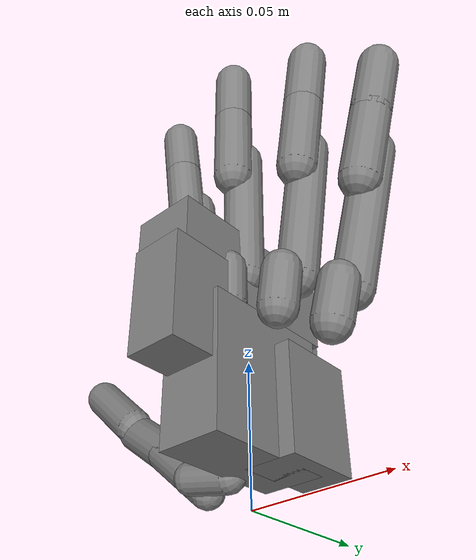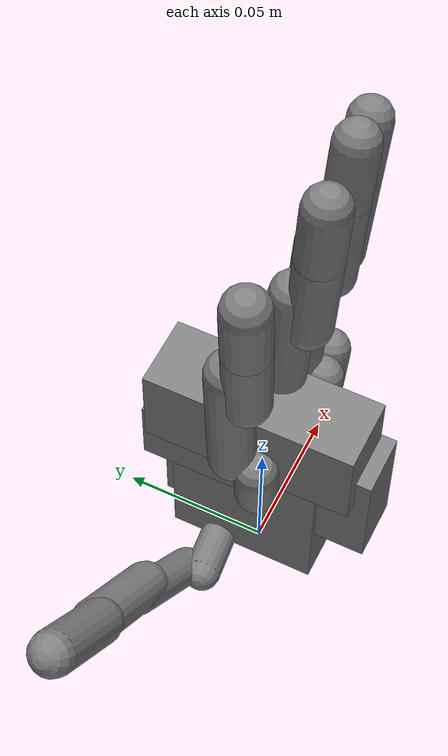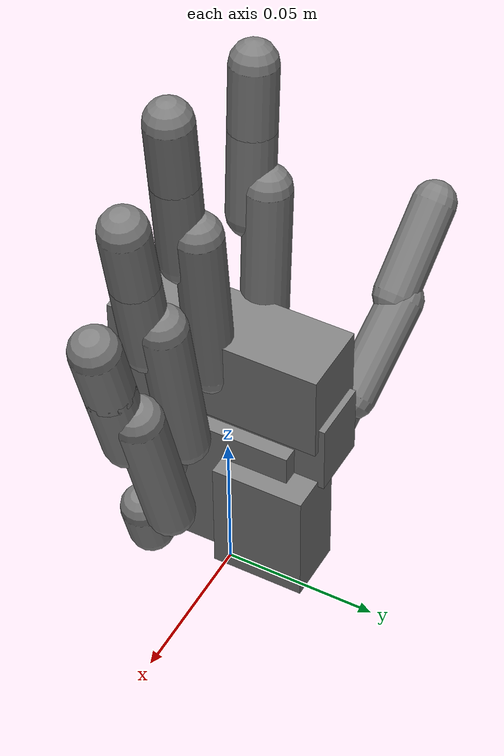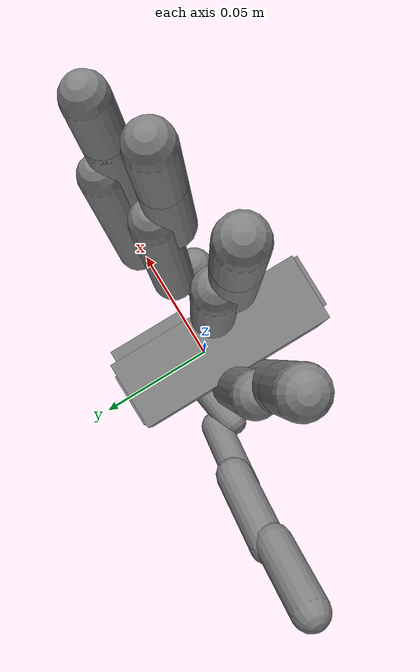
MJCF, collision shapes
<mujoco model="wujihand-right-mjx">
  <compiler angle="radian" meshdir="../meshes/right/" />

    <option timestep="0.01" integrator="Euler" iterations="5" ls_iterations="8">
    <flag eulerdamp="disable"/>
  </option>

  <custom>
    <numeric data="20" name="max_contact_points"/>
    <numeric data="16" name="max_geom_pairs"/>
  </custom>

    <default>
    <geom group="3" friction="0.2" solref="0.02 1.5" solimp="0.9 0.95 0.001" priority="1" contype="0" conaffinity="0"/>
    <joint axis="0 0 1" damping="0" armature="0.0002"/>
  </default>

  <asset>
    <mesh name="right_palm_link" content_type="model/stl" file="right_palm_link.STL" />
    <mesh name="right_finger1_link1" content_type="model/stl" file="right_finger1_link1.STL" />
    <mesh name="right_finger1_link2" content_type="model/stl" file="right_finger1_link2.STL" />
    <mesh name="right_finger1_link3" content_type="model/stl" file="right_finger1_link3.STL" />
    <mesh name="right_finger1_link4" content_type="model/stl" file="right_finger1_link4.STL" />
    <mesh name="right_finger1_tip_link" content_type="model/stl" file="right_finger1_tip_link.STL" />
    <mesh name="right_finger2_link1" content_type="model/stl" file="right_finger2_link1.STL" />
    <mesh name="right_finger2_link2" content_type="model/stl" file="right_finger2_link2.STL" />
    <mesh name="right_finger2_link3" content_type="model/stl" file="right_finger2_link3.STL" />
    <mesh name="right_finger2_link4" content_type="model/stl" file="right_finger2_link4.STL" />
    <mesh name="right_finger2_tip_link" content_type="model/stl" file="right_finger2_tip_link.STL" />
    <mesh name="right_finger3_link1" content_type="model/stl" file="right_finger3_link1.STL" />
    <mesh name="right_finger3_link2" content_type="model/stl" file="right_finger3_link2.STL" />
    <mesh name="right_finger3_link3" content_type="model/stl" file="right_finger3_link3.STL" />
    <mesh name="right_finger3_link4" content_type="model/stl" file="right_finger3_link4.STL" />
    <mesh name="right_finger3_tip_link" content_type="model/stl" file="right_finger3_tip_link.STL" />
    <mesh name="right_finger4_link1" content_type="model/stl" file="right_finger4_link1.STL" />
    <mesh name="right_finger4_link2" content_type="model/stl" file="right_finger4_link2.STL" />
    <mesh name="right_finger4_link3" content_type="model/stl" file="right_finger4_link3.STL" />
    <mesh name="right_finger4_link4" content_type="model/stl" file="right_finger4_link4.STL" />
    <mesh name="right_finger4_tip_link" content_type="model/stl" file="right_finger4_tip_link.STL" />
    <mesh name="right_finger5_link1" content_type="model/stl" file="right_finger5_link1.STL" />
    <mesh name="right_finger5_link2" content_type="model/stl" file="right_finger5_link2.STL" />
    <mesh name="right_finger5_link3" content_type="model/stl" file="right_finger5_link3.STL" />
    <mesh name="right_finger5_link4" content_type="model/stl" file="right_finger5_link4.STL" />
    <mesh name="right_finger5_tip_link" content_type="model/stl" file="right_finger5_tip_link.STL" />
  </asset>

  <worldbody>
    <body name="right_palm_link"><inertial pos="0.00464638201985134 -0.00350423603669829 0.0355450772461747" mass="0.16914" quat="-0.01772809 -0.04274722 0.09308295 0.99458230" diaginertia="1.40677446e-04 9.58896475e-05 5.81329061e-05" /><geom type="mesh" contype="0" conaffinity="0" group="1" density="0" rgba="0.6 0.8 0.9 1" mesh="right_palm_link" />
          <geom name="right_palm_main" type="box" pos="-0.006 -0.002 0.083" size="0.012 0.035 0.015" friction="0.7" contype="1" conaffinity="1"/>
      <geom name="right_palm_lower" type="box" pos="-0.003 0.0 0.04" size="0.012 0.025 0.025" friction="0.7" contype="1" conaffinity="1"/>
      <geom name="right_palm_thumb" type="box" pos="0.005 0.018 0.035" size="0.010 0.015 0.020" friction="0.7" contype="1" conaffinity="1"/>
      <geom name="right_palm_upper" type="box" pos="-0.006 0.015 0.065" size="0.010 0.020 0.012" friction="0.7" contype="1" conaffinity="1"/>
      <geom name="right_palm_pinky" type="box" pos="-0.003 -0.030 0.060" size="0.010 0.012 0.020" friction="0.7" contype="1" conaffinity="1"/>
    <body name="right_finger1_link1" pos="-0.01666 0.0081297 0.017017" quat="0.656123 -0.462124 -0.541441 0.250569">
      <inertial pos="-0.00194261 0.000842658 0.00731566" quat="0.904243 0.21652 0.0443878 -0.365368" mass="0.0075" diaginertia="3.37599e-07 3.01198e-07 2.11203e-07" />
      <joint name="right_finger1_joint1" pos="0 0 0" axis="0 1 0" range="0.0368 1.6125" actuatorfrcrange="-0.4452 0.4452" armature="0.0005" />
      <geom type="mesh" contype="0" conaffinity="0" group="1" density="0" rgba="0.7 0.7 0.7 1" mesh="right_finger1_link1" />
            <geom name="right_finger1_link1_col" type="capsule" size="0.006" fromto="0 0 0 -0.005 -0.006 0.014" contype="0" conaffinity="0"/>
      <body name="right_finger1_link2" pos="-0.00053658 0.00024788 0.014754" quat="0.644404 0.307204 -0.177187 0.677476">
        <inertial pos="1.21917e-05 -7.81224e-06 0.0130404" quat="0.815906 0.0024483 -0.00462559 0.57816" mass="0.0248" diaginertia="2.81725e-06 2.75299e-06 6.79766e-07" />
        <joint name="right_finger1_joint2" pos="0 0 0" axis="0 1 0" range="-0.1576 0.9312" actuatorfrcrange="-0.4259 0.4259" armature="0.0005" />
        <geom type="mesh" contype="0" conaffinity="0" group="1" density="0" rgba="0.9 0.8 0.6 1" mesh="right_finger1_link2" />
              <geom name="right_finger1_link2_col" type="capsule" size="0.0063" fromto="0 0 0 0 0.001 0.035" contype="2" conaffinity="2"/>
        <body name="right_finger1_link3" pos="0 0 0.0325" quat="0.480543 0.0209809 -0.0382418 -0.875886">
          <inertial pos="-9.22346e-08 -5.00306e-05 0.0142927" quat="0.999951 0 0.00989566 0" mass="0.0165" diaginertia="1.4604e-06 1.42e-06 4.49604e-07" />
          <joint name="right_finger1_joint3" pos="0 0 0" axis="0 1 0" range="-0.4638 1.5607" actuatorfrcrange="-0.1888 0.1888" />
          <geom type="mesh" contype="0" conaffinity="0" group="1" density="0" rgba="0.6 0.8 0.9 1" mesh="right_finger1_link3" />
                <geom name="right_finger1_link3_col" type="capsule" size="0.0075" fromto="0.001149 0.000087 -0.004967 -0.001675 0.00244 0.029351" contype="1" conaffinity="1"/>
          <body name="right_finger1_link4" pos="0 -5e-05 0.035">
            <inertial pos="-0.000976882 2.77882e-08 0.0108608" quat="0.705263 -0.0510236 -0.0510236 0.705263" mass="0.0206" diaginertia="1.78268e-06 1.7503e-06 7.72381e-07" />
            <joint name="right_finger1_joint4" pos="0 0 0" axis="0 1 0" range="-0.4829 1.5451" actuatorfrcrange="-0.1468 0.1468" />
            <geom type="mesh" contype="0" conaffinity="0" group="1" density="0" rgba="0.6 0.8 0.9 1" mesh="right_finger1_link4" />
                  <geom name="right_finger1_link4_col" type="capsule" size="0.0075" fromto="-0.001 0 -0.005 -0.001 0 0.027" friction="0.7" contype="1" conaffinity="1"/>
            <geom pos="-0.000557449 0 0.0276973" type="mesh" contype="0" conaffinity="0" group="1" density="0" rgba="0.6 0.8 0.9 1" mesh="right_finger1_tip_link" />

          </body>
        </body>
      </body>
    </body>
    <body name="right_finger2_link1" pos="-0.020353 -0.0033601 0.070679" quat="0.739798 -0.0262794 -0.0486741 0.670551">
      <inertial pos="-0.00177765 -1.17982e-08 0.0075998" quat="0.92388 0 0.382683 0" mass="0.0032" diaginertia="1.1e-07 7e-08 5e-08" />
      <joint name="right_finger2_joint1" pos="0 0 0" axis="0 1 0" range="-0.1611 1.5588" actuatorfrcrange="-0.6188 0.6188" armature="0.0005" />
      <geom type="mesh" contype="0" conaffinity="0" group="1" density="0" rgba="0.7 0.7 0.7 1" mesh="right_finger2_link1" />
            <geom name="right_finger2_link1_col" type="capsule" size="0.007" fromto="-0.004 0 -0.006 -0.004 0 0.008" contype="0" conaffinity="0"/>
      <body name="right_finger2_link2" pos="-0.00120098 0 0.0145" quat="0.707107 0 0 -0.707107">
        <inertial pos="6.82662e-09 4.92159e-07 0.0187992" quat="0.70703 0.0104245 0.0104245 0.70703" mass="0.033" diaginertia="6.34e-06 6.31472e-06 8.85281e-07" />
        <joint name="right_finger2_joint2" pos="0 0 0" axis="0 1 0" range="-0.4044 0.3054" actuatorfrcrange="-0.1822 0.1822" />
        <geom type="mesh" contype="0" conaffinity="0" group="1" density="0" rgba="0.9 0.8 0.6 1" mesh="right_finger2_link2" />
              <geom name="right_finger2_link2_col" type="capsule" size="0.0075" fromto="0 0.006 -0.005 0 0.006 0.049" contype="2" conaffinity="2"/>
        <body name="right_finger2_link3" pos="0 0 0.0376" quat="0.707107 0 0 0.707107">
          <inertial pos="-0.000247461 2.027e-08 0.0190489" quat="0.999892 0 -0.0146884 0" mass="0.0165" diaginertia="1.47088e-06 1.44e-06 4.49118e-07" />
          <joint name="right_finger2_joint3" pos="0 0 0" axis="0 1 0" range="-0.4714 1.5504" actuatorfrcrange="-0.2251 0.2251" />
          <geom type="mesh" contype="0" conaffinity="0" group="1" density="0" rgba="0.6 0.8 0.9 1" mesh="right_finger2_link3" />
                <geom name="right_finger2_link3_col" type="capsule" size="0.0075" fromto="0 0 0 0 0 0.0295" contype="1" conaffinity="1"/>
          <body name="right_finger2_link4" pos="0 0 0.0295">
            <inertial pos="-0.000354484 -0.000309523 0.0119913" quat="0.995301 -0.0107356 -0.093262 0.0237448" mass="0.01718" diaginertia="1.18402e-06 1.07718e-06 4.1779e-07" />
            <joint name="right_finger2_joint4" pos="0 0 0" axis="0 1 0" range="-0.4644 1.5753" actuatorfrcrange="-0.217 0.217" />
            <geom type="mesh" contype="0" conaffinity="0" group="1" density="0" rgba="0.6 0.8 0.9 1" mesh="right_finger2_link4" />
                  <geom name="right_finger2_link4_col" type="capsule" size="0.0075" fromto="0 0 0 0 0 0.022" friction="0.7" contype="1" conaffinity="1"/>
            <geom pos="-0.0016722 0 0.025" type="mesh" contype="0" conaffinity="0" group="1" density="0" rgba="0.6 0.8 0.9 1" mesh="right_finger2_tip_link" />

          </body>
        </body>
      </body>
    </body>
    <body name="right_finger3_link1" pos="0.0014735 -0.0083399 0.073903" quat="0.706847 0.0276704 0.00333924 0.706817">
      <inertial pos="-0.00177765 -1.1386e-08 0.0075998" quat="0.92388 0 0.382683 0" mass="0.0032" diaginertia="1.1e-07 7e-08 5e-08" />
      <joint name="right_finger3_joint1" pos="0 0 0" axis="0 1 0" range="-0.1719 1.5496" actuatorfrcrange="-0.6494 0.6494" armature="0.0005" />
      <geom type="mesh" contype="0" conaffinity="0" group="1" density="0" rgba="0.7 0.7 0.7 1" mesh="right_finger3_link1" />
            <geom name="right_finger3_link1_col" type="capsule" size="0.007" fromto="-0.004 0 -0.006 -0.004 0 0.008" contype="0" conaffinity="0"/>
      <body name="right_finger3_link2" pos="-0.00120098 0 0.0145" quat="0.707107 0 0 -0.707107">
        <inertial pos="9.2153e-09 4.93115e-07 0.0187992" quat="0.70703 0.0104245 0.0104245 0.70703" mass="0.033" diaginertia="6.34e-06 6.31472e-06 8.85281e-07" />
        <joint name="right_finger3_joint2" pos="0 0 0" axis="0 1 0" range="-0.4014 0.2996" actuatorfrcrange="-0.1827 0.1827" />
        <geom type="mesh" contype="0" conaffinity="0" group="1" density="0" rgba="0.9 0.8 0.6 1" mesh="right_finger3_link2" />
              <geom name="right_finger3_link2_col" type="capsule" size="0.0075" fromto="0 0.006 -0.005 0 0.006 0.049" contype="2" conaffinity="2"/>
        <body name="right_finger3_link3" pos="0 0 0.0376" quat="0.707107 0 0 0.707107">
          <inertial pos="-0.00024748 6.2451e-08 0.0190489" quat="0.999892 0 -0.0146884 0" mass="0.0165" diaginertia="1.47088e-06 1.44e-06 4.49118e-07" />
          <joint name="right_finger3_joint3" pos="0 0 0" axis="0 1 0" range="-0.4632 1.5613" actuatorfrcrange="-0.2078 0.2078" />
          <geom type="mesh" contype="0" conaffinity="0" group="1" density="0" rgba="0.6 0.8 0.9 1" mesh="right_finger3_link3" />
                <geom name="right_finger3_link3_col" type="capsule" size="0.0075" fromto="0 0 0 0 0 0.0295" contype="1" conaffinity="1"/>
          <body name="right_finger3_link4" pos="0 0 0.0295">
            <inertial pos="-0.000354466 -0.000309511 0.0119913" quat="0.995301 -0.0107356 -0.093262 0.0237448" mass="0.01718" diaginertia="1.18402e-06 1.07718e-06 4.1779e-07" />
            <joint name="right_finger3_joint4" pos="0 0 0" axis="0 1 0" range="-0.4697 1.5702" actuatorfrcrange="-0.2018 0.2018" />
            <geom type="mesh" contype="0" conaffinity="0" group="1" density="0" rgba="0.6 0.8 0.9 1" mesh="right_finger3_link4" />
                  <geom name="right_finger3_link4_col" type="capsule" size="0.0075" fromto="0 0 0 0 0 0.022" friction="0.7" contype="1" conaffinity="1"/>
            <geom pos="-0.0016722 0 0.025" type="mesh" contype="0" conaffinity="0" group="1" density="0" rgba="0.6 0.8 0.9 1" mesh="right_finger3_tip_link" />

          </body>
        </body>
      </body>
    </body>
    <body name="right_finger4_link1" pos="0.021879 -0.0056256 0.064714" quat="0.680373 0.0664803 0.0570311 0.727613">
      <inertial pos="-0.00177765 -1.12434e-08 0.00759979" quat="0.92388 0 0.382683 0" mass="0.0032" diaginertia="1.1e-07 7e-08 5e-08" />
      <joint name="right_finger4_joint1" pos="0 0 0" axis="0 1 0" range="-0.1601 1.5534" actuatorfrcrange="-0.6389 0.6389" armature="0.0005" />
      <geom type="mesh" contype="0" conaffinity="0" group="1" density="0" rgba="0.7 0.7 0.7 1" mesh="right_finger4_link1" />
            <geom name="right_finger4_link1_col" type="capsule" size="0.007" fromto="-0.004 0 -0.006 -0.004 0 0.008" contype="0" conaffinity="0"/>
      <body name="right_finger4_link2" pos="-0.00120098 0 0.0145" quat="0.707107 0 0 -0.707107">
        <inertial pos="9.30944e-09 4.93686e-07 0.0187992" quat="0.70703 0.0104245 0.0104245 0.70703" mass="0.033" diaginertia="6.34e-06 6.31472e-06 8.85281e-07" />
        <joint name="right_finger4_joint2" pos="0 0 0" axis="0 1 0" range="-0.4134 0.3161" actuatorfrcrange="-0.1832 0.1832" />
        <geom type="mesh" contype="0" conaffinity="0" group="1" density="0" rgba="0.9 0.8 0.6 1" mesh="right_finger4_link2" />
              <geom name="right_finger4_link2_col" type="capsule" size="0.0075" fromto="0 0.006 -0.005 0 0.006 0.049" contype="2" conaffinity="2"/>
        <body name="right_finger4_link3" pos="0 0 0.0376" quat="0.707107 0 0 0.707107">
          <inertial pos="-0.00024747 4.55435e-08 0.0190489" quat="0.999892 0 -0.0146884 0" mass="0.0165" diaginertia="1.47088e-06 1.44e-06 4.49118e-07" />
          <joint name="right_finger4_joint3" pos="0 0 0" axis="0 1 0" range="-0.4782 1.5448" actuatorfrcrange="-0.2249 0.2249" />
          <geom type="mesh" contype="0" conaffinity="0" group="1" density="0" rgba="0.6 0.8 0.9 1" mesh="right_finger4_link3" />
                <geom name="right_finger4_link3_col" type="capsule" size="0.0075" fromto="0 0 0 0 0 0.0295" contype="1" conaffinity="1"/>
          <body name="right_finger4_link4" pos="0 0 0.0295">
            <inertial pos="-0.00035448 -0.000309504 0.0119913" quat="0.995301 -0.0107356 -0.093262 0.0237448" mass="0.01718" diaginertia="1.18402e-06 1.07718e-06 4.1779e-07" />
            <joint name="right_finger4_joint4" pos="0 0 0" axis="0 1 0" range="-0.4825 1.555" actuatorfrcrange="-0.2044 0.2044" />
            <geom type="mesh" contype="0" conaffinity="0" group="1" density="0" rgba="0.6 0.8 0.9 1" mesh="right_finger4_link4" />
                  <geom name="right_finger4_link4_col" type="capsule" size="0.0075" fromto="0 0 0 0 0 0.022" friction="0.7" contype="1" conaffinity="1"/>
            <geom pos="-0.0016722 0 0.025" type="mesh" contype="0" conaffinity="0" group="1" density="0" rgba="0.6 0.8 0.9 1" mesh="right_finger4_tip_link" />

          </body>
        </body>
      </body>
    </body>
    <body name="right_finger5_link1" pos="0.0391447 -0.000761381 0.0540406" quat="0.65218 0.10517 0.0942698 0.744791">
      <inertial pos="-0.00177766 -1.09848e-08 0.00759979" quat="0.92388 0 0.382683 0" mass="0.0032" diaginertia="1.1e-07 7e-08 5e-08" />
      <joint name="right_finger5_joint1" pos="0 0 0" axis="0 1 0" range="-0.1674 1.5539" actuatorfrcrange="-0.6441 0.6441" armature="0.0005" />
      <geom type="mesh" contype="0" conaffinity="0" group="1" density="0" rgba="0.7 0.7 0.7 1" mesh="right_finger5_link1" />
            <geom name="right_finger5_link1_col" type="capsule" size="0.007" fromto="-0.004 0 -0.006 -0.004 0 0.008" contype="0" conaffinity="0"/>
      <body name="right_finger5_link2" pos="-0.00120098 0 0.0145" quat="0.707094 0 0 -0.70712">
        <inertial pos="7.38664e-09 2.44707e-07 0.0167867" quat="0.70703 0.0104245 0.0104245 0.70703" mass="0.033" diaginertia="6.34e-06 6.31472e-06 8.85281e-07" />
        <joint name="right_finger5_joint2" pos="0 0 0" axis="0 1 0" range="-0.4203 0.2931" actuatorfrcrange="-0.1798 0.1798" />
        <geom type="mesh" contype="0" conaffinity="0" group="1" density="0" rgba="0.9 0.8 0.6 1" mesh="right_finger5_link2" />
              <geom name="right_finger5_link2_col" type="capsule" size="0.0075" fromto="0 0.006 -0.005 0 0.006 0.049" contype="2" conaffinity="2"/>
        <body name="right_finger5_link3" pos="-0.0001 0 0.0336" quat="0.707094 0 0 0.70712">
          <inertial pos="-0.000264216 3.09184e-08 0.0178974" quat="0.999892 0 -0.0146884 0" mass="0.0165" diaginertia="1.47088e-06 1.44e-06 4.49118e-07" />
          <joint name="right_finger5_joint3" pos="0 0 0" axis="0 1 0" range="-0.4804 1.542" actuatorfrcrange="-0.2384 0.2384" />
          <geom type="mesh" contype="0" conaffinity="0" group="1" density="0" rgba="0.6 0.8 0.9 1" mesh="right_finger5_link3" />
                <geom name="right_finger5_link3_col" type="capsule" size="0.0075" fromto="0 0 0 0 0 0.0295" contype="1" conaffinity="1"/>
          <body name="right_finger5_link4" pos="0 0 0.0275">
            <inertial pos="-0.000260983 -0.000309489 0.0121005" quat="0.995301 -0.0107356 -0.093262 0.0237448" mass="0.01718" diaginertia="1.18402e-06 1.07718e-06 4.1779e-07" />
            <joint name="right_finger5_joint4" pos="0 0 0" axis="0 1 0" range="-0.4705 1.5709" actuatorfrcrange="-0.1866 0.1866" />
            <geom type="mesh" contype="0" conaffinity="0" group="1" density="0" rgba="0.6 0.8 0.9 1" mesh="right_finger5_link4" />
                  <geom name="right_finger5_link4_col" type="capsule" size="0.0075" fromto="0 0 0 0 0 0.022" friction="0.7" contype="1" conaffinity="1"/>
            <geom pos="-0.0016722 0 0.025" type="mesh" contype="0" conaffinity="0" group="1" density="0" rgba="0.6 0.8 0.9 1" mesh="right_finger5_tip_link" />

          </body>
        </body>
      </body>
    </body>
  </body></worldbody>

  <contact>
    <exclude body1="right_palm_link" body2="right_finger1_link1"/>
    <exclude body1="right_palm_link" body2="right_finger2_link1"/>
    <exclude body1="right_palm_link" body2="right_finger3_link1"/>
    <exclude body1="right_palm_link" body2="right_finger4_link1"/>
    <exclude body1="right_palm_link" body2="right_finger5_link1"/>
    <exclude body1="right_palm_link" body2="right_finger1_link2"/>
    <exclude body1="right_palm_link" body2="right_finger2_link2"/>
    <exclude body1="right_palm_link" body2="right_finger3_link2"/>
    <exclude body1="right_palm_link" body2="right_finger4_link2"/>
    <exclude body1="right_palm_link" body2="right_finger5_link2"/>
    <exclude body1="right_finger2_link1" body2="right_finger3_link1"/>
    <exclude body1="right_finger3_link1" body2="right_finger4_link1"/>
    <exclude body1="right_finger4_link1" body2="right_finger5_link1"/>
  </contact>
  <actuator>
    <position name="right_finger1_joint1_actuator" joint="right_finger1_joint1" kp="0.40844710645048043" kv="0.020882010257063675" ctrlrange="0.0368 1.613" forcerange="-0.4452 0.4452" />
    <position name="right_finger1_joint2_actuator" joint="right_finger1_joint2" kp="0.6858601063643346" kv="0.030610939996373314" ctrlrange="-0.1576 0.9312" forcerange="-0.4259 0.4259" />
    <position name="right_finger1_joint3_actuator" joint="right_finger1_joint3" kp="0.2391112196099482" kv="0.010181475050560962" ctrlrange="-0.4638 1.561" forcerange="-0.1888 0.1888" />
    <position name="right_finger1_joint4_actuator" joint="right_finger1_joint4" kp="0.20736128319711747" kv="0.00909698844675045" ctrlrange="-0.4829 1.545" forcerange="-0.1468 0.1468" />
    <position name="right_finger2_joint1_actuator" joint="right_finger2_joint1" kp="0.37352218155860073" kv="0.01882274330029718" ctrlrange="-0.1611 1.559" forcerange="-0.6188 0.6188" />
    <position name="right_finger2_joint2_actuator" joint="right_finger2_joint2" kp="0.45592448909027794" kv="0.019798167597016643" ctrlrange="-0.4044 0.3054" forcerange="-0.1822 0.1822" />
    <position name="right_finger2_joint3_actuator" joint="right_finger2_joint3" kp="0.24368366649522863" kv="0.010477031953162727" ctrlrange="-0.4714 1.55" forcerange="-0.2251 0.2251" />
    <position name="right_finger2_joint4_actuator" joint="right_finger2_joint4" kp="0.18026971340925335" kv="0.008240212147903584" ctrlrange="-0.4644 1.575" forcerange="-0.217 0.217" />
    <position name="right_finger3_joint1_actuator" joint="right_finger3_joint1" kp="0.3687093483646485" kv="0.01848622487024593" ctrlrange="-0.1719 1.55" forcerange="-0.6494 0.6494" />
    <position name="right_finger3_joint2_actuator" joint="right_finger3_joint2" kp="0.4164253443634641" kv="0.018032947229953678" ctrlrange="-0.4014 0.2996" forcerange="-0.1827 0.1827" />
    <position name="right_finger3_joint3_actuator" joint="right_finger3_joint3" kp="0.22218607502059182" kv="0.009592200014076666" ctrlrange="-0.4632 1.561" forcerange="-0.2078 0.2078" />
    <position name="right_finger3_joint4_actuator" joint="right_finger3_joint4" kp="0.19427606072023446" kv="0.009152994605972402" ctrlrange="-0.4697 1.57" forcerange="-0.2018 0.2018" />
    <position name="right_finger4_joint1_actuator" joint="right_finger4_joint1" kp="0.35718151495111794" kv="0.018376606800780005" ctrlrange="-0.1601 1.553" forcerange="-0.6389 0.6389" />
    <position name="right_finger4_joint2_actuator" joint="right_finger4_joint2" kp="0.42977315313086895" kv="0.01867700966212433" ctrlrange="-0.4134 0.3161" forcerange="-0.1832 0.1832" />
    <position name="right_finger4_joint3_actuator" joint="right_finger4_joint3" kp="0.24930151196247122" kv="0.01059512121009555" ctrlrange="-0.4782 1.545" forcerange="-0.2249 0.2249" />
    <position name="right_finger4_joint4_actuator" joint="right_finger4_joint4" kp="0.2285032688178066" kv="0.009917602877441107" ctrlrange="-0.4825 1.555" forcerange="-0.2044 0.2044" />
    <position name="right_finger5_joint1_actuator" joint="right_finger5_joint1" kp="0.3655325975433942" kv="0.018616960278988272" ctrlrange="-0.1674 1.554" forcerange="-0.6441 0.6441" />
    <position name="right_finger5_joint2_actuator" joint="right_finger5_joint2" kp="0.41393113081120425" kv="0.018732177029667153" ctrlrange="-0.4203 0.2931" forcerange="-0.1798 0.1798" />
    <position name="right_finger5_joint3_actuator" joint="right_finger5_joint3" kp="0.22729367621965954" kv="0.00951005441616486" ctrlrange="-0.4804 1.542" forcerange="-0.2384 0.2384" />
    <position name="right_finger5_joint4_actuator" joint="right_finger5_joint4" kp="0.1964723550341816" kv="0.009017295241756363" ctrlrange="-0.4705 1.571" forcerange="-0.1866 0.1866" />
  </actuator>
</mujoco>
